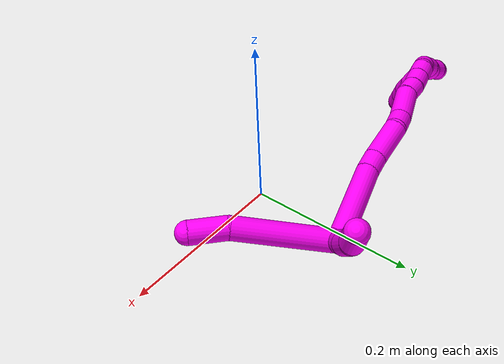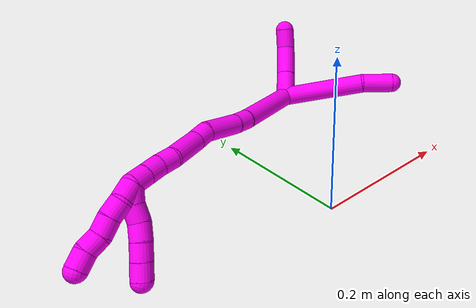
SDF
<sdf version="1.7">
 <world name="default">
  <model name="bin">
   <static>1</static>
   <link name="bottom">
    <collision name="collision-bottom">
     <pose>0 0 -0.01 0 -0 0</pose>
     <geometry><box><size>0.8 0.6 0.02</size></box></geometry>
     <surface>
      <friction><ode><mu>100</mu><mu2>100</mu2></ode></friction>
      <contact><collide_bitmask>65535</collide_bitmask></contact>
     </surface>
    </collision>
   </link>
   <link name="west_wall">
    <collision name="collision-west_wall">
     <pose>-0.41 0 0.1 0 -0 0</pose>
     <geometry><box><size>0.02 0.6 0.2</size></box></geometry>
     <surface>
      <friction><ode><mu>100</mu><mu2>100</mu2></ode></friction>
      <contact><collide_bitmask>65535</collide_bitmask></contact>
     </surface>
    </collision>
   </link>
   <link name="east_wall">
    <collision name="collision-east_wall">
     <pose>0.41 0 0.1 0 -0 0</pose>
     <geometry><box><size>0.02 0.6 0.2</size></box></geometry>
     <surface>
      <friction><ode><mu>100</mu><mu2>100</mu2></ode></friction>
      <contact><collide_bitmask>65535</collide_bitmask></contact>
     </surface>
    </collision>
   </link>
   <link name="south_wall">
    <collision name="collision-south_wall">
     <pose>0 -0.31 0.1 0 -0 0</pose>
     <geometry><box><size>0.8 0.02 0.2</size></box></geometry>
     <surface>
      <friction><ode><mu>100</mu><mu2>100</mu2></ode></friction>
      <contact><collide_bitmask>65535</collide_bitmask></contact>
     </surface>
    </collision>
   </link>
   <link name="north_wall">
    <collision name="collision-north_wall">
     <pose>0 0.31 0.1 0 -0 0</pose>
     <geometry><box><size>0.8 0.02 0.2</size></box></geometry>
     <surface>
      <friction><ode><mu>100</mu><mu2>100</mu2></ode></friction>
      <contact><collide_bitmask>65535</collide_bitmask></contact>
     </surface>
    </collision>
   </link>
  </model>
  <model name="10">
   <static>0</static>
   <link name="10">
    <collision name="collision-cylinder-e_1_2_8">
     <pose>0.01568 -0.048637 0.02028 1.17576 0.28921 0.193504</pose>
     <geometry><cylinder><radius>0.0125</radius><length>0.109958</length></cylinder></geometry>
     <surface>
      <friction><ode><mu>1.16</mu><mu2>1.16</mu2><slip1>0</slip1><slip2>0</slip2></ode></friction>
      <contact><ode><kp>1e+06</kp><kd>1</kd><max_vel>0</max_vel><min_depth>0.001</min_depth></ode></contact>
     </surface>
    </collision>
    <visual name="visual-cylinder-e_1_2_8">
     <pose>0.01568 -0.048637 0.02028 1.17576 0.28921 0.193504</pose>
     <geometry><cylinder><radius>0.0125</radius><length>0.109958</length></cylinder></geometry>
     <material><ambient>1 0 0.964706 1</ambient></material>
    </visual>
    <collision name="collision-cylinder-e_2_8_6">
     <pose>0.041371 -0.113865 0.045595 1.27608 0.523633 0.392287</pose>
     <geometry><cylinder><radius>0.0125</radius><length>0.040042</length></cylinder></geometry>
     <surface>
      <friction><ode><mu>1.16</mu><mu2>1.16</mu2><slip1>0</slip1><slip2>0</slip2></ode></friction>
      <contact><ode><kp>1e+06</kp><kd>1</kd><max_vel>0</max_vel><min_depth>0.001</min_depth></ode></contact>
     </surface>
    </collision>
    <visual name="visual-cylinder-e_2_8_6">
     <pose>0.041371 -0.113865 0.045595 1.27608 0.523633 0.392287</pose>
     <geometry><cylinder><radius>0.0125</radius><length>0.040042</length></cylinder></geometry>
     <material><ambient>1 0 0.964706 1</ambient></material>
    </visual>
    <collision name="collision-cylinder-e_1_2_9">
     <pose>0.002709 0.005602 0.015783 -0.341046 0.160358 -0.02767</pose>
     <geometry><cylinder><radius>0.0125</radius><length>0.033931</length></cylinder></geometry>
     <surface>
      <friction><ode><mu>1.16</mu><mu2>1.16</mu2><slip1>0</slip1><slip2>0</slip2></ode></friction>
      <contact><ode><kp>1e+06</kp><kd>1</kd><max_vel>0</max_vel><min_depth>0.001</min_depth></ode></contact>
     </surface>
    </collision>
    <visual name="visual-cylinder-e_1_2_9">
     <pose>0.002709 0.005602 0.015783 -0.341046 0.160358 -0.02767</pose>
     <geometry><cylinder><radius>0.0125</radius><length>0.033931</length></cylinder></geometry>
     <material><ambient>1 0 0.964706 1</ambient></material>
    </visual>
    <collision name="collision-cylinder-e_2_9_10">
     <pose>0.006724 0.017581 0.050458 -0.325586 0.065401 -0.010746</pose>
     <geometry><cylinder><radius>0.0125</radius><length>0.039963</length></cylinder></geometry>
     <surface>
      <friction><ode><mu>1.16</mu><mu2>1.16</mu2><slip1>0</slip1><slip2>0</slip2></ode></friction>
      <contact><ode><kp>1e+06</kp><kd>1</kd><max_vel>0</max_vel><min_depth>0.001</min_depth></ode></contact>
     </surface>
    </collision>
    <visual name="visual-cylinder-e_2_9_10">
     <pose>0.006724 0.017581 0.050458 -0.325586 0.065401 -0.010746</pose>
     <geometry><cylinder><radius>0.0125</radius><length>0.039963</length></cylinder></geometry>
     <material><ambient>1 0 0.964706 1</ambient></material>
    </visual>
    <collision name="collision-cylinder-e_3_10_5">
     <pose>0.004869 0.026372 0.081782 -0.191711 -0.244566 0.023632</pose>
     <geometry><cylinder><radius>0.0125</radius><length>0.026105</length></cylinder></geometry>
     <surface>
      <friction><ode><mu>1.16</mu><mu2>1.16</mu2><slip1>0</slip1><slip2>0</slip2></ode></friction>
      <contact><ode><kp>1e+06</kp><kd>1</kd><max_vel>0</max_vel><min_depth>0.001</min_depth></ode></contact>
     </surface>
    </collision>
    <visual name="visual-cylinder-e_3_10_5">
     <pose>0.004869 0.026372 0.081782 -0.191711 -0.244566 0.023632</pose>
     <geometry><cylinder><radius>0.0125</radius><length>0.026105</length></cylinder></geometry>
     <material><ambient>1 0 0.964706 1</ambient></material>
    </visual>
    <collision name="collision-cylinder-e_1_2_11">
     <pose>-0.044256 -0.003769 -0.023643 2.98353 -1.07491 -2.87737</pose>
     <geometry><cylinder><radius>0.0125</radius><length>0.100634</length></cylinder></geometry>
     <surface>
      <friction><ode><mu>1.16</mu><mu2>1.16</mu2><slip1>0</slip1><slip2>0</slip2></ode></friction>
      <contact><ode><kp>1e+06</kp><kd>1</kd><max_vel>0</max_vel><min_depth>0.001</min_depth></ode></contact>
     </surface>
    </collision>
    <visual name="visual-cylinder-e_1_2_11">
     <pose>-0.044256 -0.003769 -0.023643 2.98353 -1.07491 -2.87737</pose>
     <geometry><cylinder><radius>0.0125</radius><length>0.100634</length></cylinder></geometry>
     <material><ambient>1 0 0.964706 1</ambient></material>
    </visual>
    <collision name="collision-cylinder-e_2_11_12">
     <pose>-0.098472 -0.007171 -0.052077 -3.06531 -1.12126 3.02019</pose>
     <geometry><cylinder><radius>0.0125</radius><length>0.022116</length></cylinder></geometry>
     <surface>
      <friction><ode><mu>1.16</mu><mu2>1.16</mu2><slip1>0</slip1><slip2>0</slip2></ode></friction>
      <contact><ode><kp>1e+06</kp><kd>1</kd><max_vel>0</max_vel><min_depth>0.001</min_depth></ode></contact>
     </surface>
    </collision>
    <visual name="visual-cylinder-e_2_11_12">
     <pose>-0.098472 -0.007171 -0.052077 -3.06531 -1.12126 3.02019</pose>
     <geometry><cylinder><radius>0.0125</radius><length>0.022116</length></cylinder></geometry>
     <material><ambient>1 0 0.964706 1</ambient></material>
    </visual>
    <collision name="collision-cylinder-e_3_12_13">
     <pose>-0.130995 -0.003995 -0.065921 -2.84065 -1.17312 2.69299</pose>
     <geometry><cylinder><radius>0.0125</radius><length>0.048947</length></cylinder></geometry>
     <surface>
      <friction><ode><mu>1.16</mu><mu2>1.16</mu2><slip1>0</slip1><slip2>0</slip2></ode></friction>
      <contact><ode><kp>1e+06</kp><kd>1</kd><max_vel>0</max_vel><min_depth>0.001</min_depth></ode></contact>
     </surface>
    </collision>
    <visual name="visual-cylinder-e_3_12_13">
     <pose>-0.130995 -0.003995 -0.065921 -2.84065 -1.17312 2.69299</pose>
     <geometry><cylinder><radius>0.0125</radius><length>0.048947</length></cylinder></geometry>
     <material><ambient>1 0 0.964706 1</ambient></material>
    </visual>
    <collision name="collision-cylinder-e_4_13_14">
     <pose>-0.161838 -0.00178 -0.081565 3.05159 -0.896422 -2.95484</pose>
     <geometry><cylinder><radius>0.0125</radius><length>0.0212</length></cylinder></geometry>
     <surface>
      <friction><ode><mu>1.16</mu><mu2>1.16</mu2><slip1>0</slip1><slip2>0</slip2></ode></friction>
      <contact><ode><kp>1e+06</kp><kd>1</kd><max_vel>0</max_vel><min_depth>0.001</min_depth></ode></contact>
     </surface>
    </collision>
    <visual name="visual-cylinder-e_4_13_14">
     <pose>-0.161838 -0.00178 -0.081565 3.05159 -0.896422 -2.95484</pose>
     <geometry><cylinder><radius>0.0125</radius><length>0.0212</length></cylinder></geometry>
     <material><ambient>1 0 0.964706 1</ambient></material>
    </visual>
    <collision name="collision-cylinder-e_5_14_15">
     <pose>-0.189279 -0.005907 -0.099457 2.83871 -1.01735 -2.60731</pose>
     <geometry><cylinder><radius>0.0125</radius><length>0.045047</length></cylinder></geometry>
     <surface>
      <friction><ode><mu>1.16</mu><mu2>1.16</mu2><slip1>0</slip1><slip2>0</slip2></ode></friction>
      <contact><ode><kp>1e+06</kp><kd>1</kd><max_vel>0</max_vel><min_depth>0.001</min_depth></ode></contact>
     </surface>
    </collision>
    <visual name="visual-cylinder-e_5_14_15">
     <pose>-0.189279 -0.005907 -0.099457 2.83871 -1.01735 -2.60731</pose>
     <geometry><cylinder><radius>0.0125</radius><length>0.045047</length></cylinder></geometry>
     <material><ambient>1 0 0.964706 1</ambient></material>
    </visual>
    <collision name="collision-cylinder-e_6_15_16">
     <pose>-0.216688 -0.008254 -0.116508 -2.93851 -0.95211 2.75138</pose>
     <geometry><cylinder><radius>0.0125</radius><length>0.020249</length></cylinder></geometry>
     <surface>
      <friction><ode><mu>1.16</mu><mu2>1.16</mu2><slip1>0</slip1><slip2>0</slip2></ode></friction>
      <contact><ode><kp>1e+06</kp><kd>1</kd><max_vel>0</max_vel><min_depth>0.001</min_depth></ode></contact>
     </surface>
    </collision>
    <visual name="visual-cylinder-e_6_15_16">
     <pose>-0.216688 -0.008254 -0.116508 -2.93851 -0.95211 2.75138</pose>
     <geometry><cylinder><radius>0.0125</radius><length>0.020249</length></cylinder></geometry>
     <material><ambient>1 0 0.964706 1</ambient></material>
    </visual>
    <collision name="collision-cylinder-e_7_16_17">
     <pose>-0.233762 -0.007483 -0.128263 3.07283 -0.97239 -3.01161</pose>
     <geometry><cylinder><radius>0.0125</radius><length>0.021365</length></cylinder></geometry>
     <surface>
      <friction><ode><mu>1.16</mu><mu2>1.16</mu2><slip1>0</slip1><slip2>0</slip2></ode></friction>
      <contact><ode><kp>1e+06</kp><kd>1</kd><max_vel>0</max_vel><min_depth>0.001</min_depth></ode></contact>
     </surface>
    </collision>
    <visual name="visual-cylinder-e_7_16_17">
     <pose>-0.233762 -0.007483 -0.128263 3.07283 -0.97239 -3.01161</pose>
     <geometry><cylinder><radius>0.0125</radius><length>0.021365</length></cylinder></geometry>
     <material><ambient>1 0 0.964706 1</ambient></material>
    </visual>
    <collision name="collision-cylinder-e_8_17_1">
     <pose>-0.251017 -0.008286 -0.140035 3.0741 -0.969584 -3.01359</pose>
     <geometry><cylinder><radius>0.0125</radius><length>0.020441</length></cylinder></geometry>
     <surface>
      <friction><ode><mu>1.16</mu><mu2>1.16</mu2><slip1>0</slip1><slip2>0</slip2></ode></friction>
      <contact><ode><kp>1e+06</kp><kd>1</kd><max_vel>0</max_vel><min_depth>0.001</min_depth></ode></contact>
     </surface>
    </collision>
    <visual name="visual-cylinder-e_8_17_1">
     <pose>-0.251017 -0.008286 -0.140035 3.0741 -0.969584 -3.01359</pose>
     <geometry><cylinder><radius>0.0125</radius><length>0.020441</length></cylinder></geometry>
     <material><ambient>1 0 0.964706 1</ambient></material>
    </visual>
    <collision name="collision-cylinder-e_1_1_18">
     <pose>-0.25766 -0.011142 -0.155328 2.88826 0.179462 1.23015</pose>
     <geometry><cylinder><radius>0.0125</radius><length>0.02</length></cylinder></geometry>
     <surface>
      <friction><ode><mu>1.16</mu><mu2>1.16</mu2><slip1>0</slip1><slip2>0</slip2></ode></friction>
      <contact><ode><kp>1e+06</kp><kd>1</kd><max_vel>0</max_vel><min_depth>0.001</min_depth></ode></contact>
     </surface>
    </collision>
    <visual name="visual-cylinder-e_1_1_18">
     <pose>-0.25766 -0.011142 -0.155328 2.88826 0.179462 1.23015</pose>
     <geometry><cylinder><radius>0.0125</radius><length>0.02</length></cylinder></geometry>
     <material><ambient>1 0 0.964706 1</ambient></material>
    </visual>
    <collision name="collision-cylinder-e_2_18_19">
     <pose>-0.252291 -0.017725 -0.173232 2.68485 0.366566 1.34644</pose>
     <geometry><cylinder><radius>0.0125</radius><length>0.02</length></cylinder></geometry>
     <surface>
      <friction><ode><mu>1.16</mu><mu2>1.16</mu2><slip1>0</slip1><slip2>0</slip2></ode></friction>
      <contact><ode><kp>1e+06</kp><kd>1</kd><max_vel>0</max_vel><min_depth>0.001</min_depth></ode></contact>
     </surface>
    </collision>
    <visual name="visual-cylinder-e_2_18_19">
     <pose>-0.252291 -0.017725 -0.173232 2.68485 0.366566 1.34644</pose>
     <geometry><cylinder><radius>0.0125</radius><length>0.02</length></cylinder></geometry>
     <material><ambient>1 0 0.964706 1</ambient></material>
    </visual>
    <collision name="collision-cylinder-e_3_19_20">
     <pose>-0.247649 -0.025293 -0.190937 2.7873 0.106033 0.576335</pose>
     <geometry><cylinder><radius>0.0125</radius><length>0.02</length></cylinder></geometry>
     <surface>
      <friction><ode><mu>1.16</mu><mu2>1.16</mu2><slip1>0</slip1><slip2>0</slip2></ode></friction>
      <contact><ode><kp>1e+06</kp><kd>1</kd><max_vel>0</max_vel><min_depth>0.001</min_depth></ode></contact>
     </surface>
    </collision>
    <visual name="visual-cylinder-e_3_19_20">
     <pose>-0.247649 -0.025293 -0.190937 2.7873 0.106033 0.576335</pose>
     <geometry><cylinder><radius>0.0125</radius><length>0.02</length></cylinder></geometry>
     <material><ambient>1 0 0.964706 1</ambient></material>
    </visual>
    <collision name="collision-cylinder-e_4_20_21">
     <pose>-0.245465 -0.031138 -0.209907 2.89813 0.112787 0.864678</pose>
     <geometry><cylinder><radius>0.0125</radius><length>0.02</length></cylinder></geometry>
     <surface>
      <friction><ode><mu>1.16</mu><mu2>1.16</mu2><slip1>0</slip1><slip2>0</slip2></ode></friction>
      <contact><ode><kp>1e+06</kp><kd>1</kd><max_vel>0</max_vel><min_depth>0.001</min_depth></ode></contact>
     </surface>
    </collision>
    <visual name="visual-cylinder-e_4_20_21">
     <pose>-0.245465 -0.031138 -0.209907 2.89813 0.112787 0.864678</pose>
     <geometry><cylinder><radius>0.0125</radius><length>0.02</length></cylinder></geometry>
     <material><ambient>1 0 0.964706 1</ambient></material>
    </visual>
    <collision name="collision-cylinder-e_5_21_4">
     <pose>-0.243096 -0.035929 -0.229179 2.89776 0.12469 0.942434</pose>
     <geometry><cylinder><radius>0.0125</radius><length>0.02</length></cylinder></geometry>
     <surface>
      <friction><ode><mu>1.16</mu><mu2>1.16</mu2><slip1>0</slip1><slip2>0</slip2></ode></friction>
      <contact><ode><kp>1e+06</kp><kd>1</kd><max_vel>0</max_vel><min_depth>0.001</min_depth></ode></contact>
     </surface>
    </collision>
    <visual name="visual-cylinder-e_5_21_4">
     <pose>-0.243096 -0.035929 -0.229179 2.89776 0.12469 0.942434</pose>
     <geometry><cylinder><radius>0.0125</radius><length>0.02</length></cylinder></geometry>
     <material><ambient>1 0 0.964706 1</ambient></material>
    </visual>
    <collision name="collision-cylinder-e_1_1_22">
     <pose>-0.264659 -0.009783 -0.154264 3.01149 -0.548455 -2.68647</pose>
     <geometry><cylinder><radius>0.0125</radius><length>0.02</length></cylinder></geometry>
     <surface>
      <friction><ode><mu>1.16</mu><mu2>1.16</mu2><slip1>0</slip1><slip2>0</slip2></ode></friction>
      <contact><ode><kp>1e+06</kp><kd>1</kd><max_vel>0</max_vel><min_depth>0.001</min_depth></ode></contact>
     </surface>
    </collision>
    <visual name="visual-cylinder-e_1_1_22">
     <pose>-0.264659 -0.009783 -0.154264 3.01149 -0.548455 -2.68647</pose>
     <geometry><cylinder><radius>0.0125</radius><length>0.02</length></cylinder></geometry>
     <material><ambient>1 0 0.964706 1</ambient></material>
    </visual>
    <collision name="collision-cylinder-e_2_22_23">
     <pose>-0.273596 -0.009338 -0.171875 -2.97355 -0.381508 2.31903</pose>
     <geometry><cylinder><radius>0.0125</radius><length>0.02</length></cylinder></geometry>
     <surface>
      <friction><ode><mu>1.16</mu><mu2>1.16</mu2><slip1>0</slip1><slip2>0</slip2></ode></friction>
      <contact><ode><kp>1e+06</kp><kd>1</kd><max_vel>0</max_vel><min_depth>0.001</min_depth></ode></contact>
     </surface>
    </collision>
    <visual name="visual-cylinder-e_2_22_23">
     <pose>-0.273596 -0.009338 -0.171875 -2.97355 -0.381508 2.31903</pose>
     <geometry><cylinder><radius>0.0125</radius><length>0.02</length></cylinder></geometry>
     <material><ambient>1 0 0.964706 1</ambient></material>
    </visual>
    <collision name="collision-cylinder-e_3_23_24">
     <pose>-0.280051 -0.007518 -0.190642 -3.11375 -0.276647 2.94227</pose>
     <geometry><cylinder><radius>0.0125</radius><length>0.02</length></cylinder></geometry>
     <surface>
      <friction><ode><mu>1.16</mu><mu2>1.16</mu2><slip1>0</slip1><slip2>0</slip2></ode></friction>
      <contact><ode><kp>1e+06</kp><kd>1</kd><max_vel>0</max_vel><min_depth>0.001</min_depth></ode></contact>
     </surface>
    </collision>
    <visual name="visual-cylinder-e_3_23_24">
     <pose>-0.280051 -0.007518 -0.190642 -3.11375 -0.276647 2.94227</pose>
     <geometry><cylinder><radius>0.0125</radius><length>0.02</length></cylinder></geometry>
     <material><ambient>1 0 0.964706 1</ambient></material>
    </visual>
    <collision name="collision-cylinder-e_4_24_25">
     <pose>-0.28776 -0.005144 -0.208671 -2.89637 -0.5211 2.27566</pose>
     <geometry><cylinder><radius>0.0125</radius><length>0.02</length></cylinder></geometry>
     <surface>
      <friction><ode><mu>1.16</mu><mu2>1.16</mu2><slip1>0</slip1><slip2>0</slip2></ode></friction>
      <contact><ode><kp>1e+06</kp><kd>1</kd><max_vel>0</max_vel><min_depth>0.001</min_depth></ode></contact>
     </surface>
    </collision>
    <visual name="visual-cylinder-e_4_24_25">
     <pose>-0.28776 -0.005144 -0.208671 -2.89637 -0.5211 2.27566</pose>
     <geometry><cylinder><radius>0.0125</radius><length>0.02</length></cylinder></geometry>
     <material><ambient>1 0 0.964706 1</ambient></material>
    </visual>
    <collision name="collision-cylinder-e_5_25_3">
     <pose>-0.29611 -0.003413 -0.226491 3.10187 -0.343843 -2.9138</pose>
     <geometry><cylinder><radius>0.0125</radius><length>0.02</length></cylinder></geometry>
     <surface>
      <friction><ode><mu>1.16</mu><mu2>1.16</mu2><slip1>0</slip1><slip2>0</slip2></ode></friction>
      <contact><ode><kp>1e+06</kp><kd>1</kd><max_vel>0</max_vel><min_depth>0.001</min_depth></ode></contact>
     </surface>
    </collision>
    <visual name="visual-cylinder-e_5_25_3">
     <pose>-0.29611 -0.003413 -0.226491 3.10187 -0.343843 -2.9138</pose>
     <geometry><cylinder><radius>0.0125</radius><length>0.02</length></cylinder></geometry>
     <material><ambient>1 0 0.964706 1</ambient></material>
    </visual>
    <collision name="collision-sphere-3">
     <pose>-0.299481 -0.003787 -0.235899 0 -0 0</pose>
     <geometry><sphere><radius>0.0125</radius></sphere></geometry>
     <surface>
      <friction><ode><mu>1.16</mu><mu2>1.16</mu2><slip1>0</slip1><slip2>0</slip2></ode></friction>
      <contact><ode><kp>1e+06</kp><kd>1</kd><max_vel>0</max_vel><min_depth>0.001</min_depth></ode></contact>
     </surface>
    </collision>
    <visual name="visual-sphere-3">
     <pose>-0.299481 -0.003787 -0.235899 0 -0 0</pose>
     <geometry><sphere><radius>0.0125</radius></sphere></geometry>
     <material><ambient>1 0 0.964706 1</ambient></material>
    </visual>
    <collision name="collision-sphere-25">
     <pose>-0.292739 -0.003039 -0.217084 0 -0 0</pose>
     <geometry><sphere><radius>0.0125</radius></sphere></geometry>
     <surface>
      <friction><ode><mu>1.16</mu><mu2>1.16</mu2><slip1>0</slip1><slip2>0</slip2></ode></friction>
      <contact><ode><kp>1e+06</kp><kd>1</kd><max_vel>0</max_vel><min_depth>0.001</min_depth></ode></contact>
     </surface>
    </collision>
    <visual name="visual-sphere-25">
     <pose>-0.292739 -0.003039 -0.217084 0 -0 0</pose>
     <geometry><sphere><radius>0.0125</radius></sphere></geometry>
     <material><ambient>1 0 0.964706 1</ambient></material>
    </visual>
    <collision name="collision-sphere-24">
     <pose>-0.282782 -0.00725 -0.200258 0 -0 0</pose>
     <geometry><sphere><radius>0.0125</radius></sphere></geometry>
     <surface>
      <friction><ode><mu>1.16</mu><mu2>1.16</mu2><slip1>0</slip1><slip2>0</slip2></ode></friction>
      <contact><ode><kp>1e+06</kp><kd>1</kd><max_vel>0</max_vel><min_depth>0.001</min_depth></ode></contact>
     </surface>
    </collision>
    <visual name="visual-sphere-24">
     <pose>-0.282782 -0.00725 -0.200258 0 -0 0</pose>
     <geometry><sphere><radius>0.0125</radius></sphere></geometry>
     <material><ambient>1 0 0.964706 1</ambient></material>
    </visual>
    <collision name="collision-sphere-23">
     <pose>-0.277319 -0.007785 -0.181026 0 -0 0</pose>
     <geometry><sphere><radius>0.0125</radius></sphere></geometry>
     <surface>
      <friction><ode><mu>1.16</mu><mu2>1.16</mu2><slip1>0</slip1><slip2>0</slip2></ode></friction>
      <contact><ode><kp>1e+06</kp><kd>1</kd><max_vel>0</max_vel><min_depth>0.001</min_depth></ode></contact>
     </surface>
    </collision>
    <visual name="visual-sphere-23">
     <pose>-0.277319 -0.007785 -0.181026 0 -0 0</pose>
     <geometry><sphere><radius>0.0125</radius></sphere></geometry>
     <material><ambient>1 0 0.964706 1</ambient></material>
    </visual>
    <collision name="collision-sphere-22">
     <pose>-0.269873 -0.01089 -0.162725 0 -0 0</pose>
     <geometry><sphere><radius>0.0125</radius></sphere></geometry>
     <surface>
      <friction><ode><mu>1.16</mu><mu2>1.16</mu2><slip1>0</slip1><slip2>0</slip2></ode></friction>
      <contact><ode><kp>1e+06</kp><kd>1</kd><max_vel>0</max_vel><min_depth>0.001</min_depth></ode></contact>
     </surface>
    </collision>
    <visual name="visual-sphere-22">
     <pose>-0.269873 -0.01089 -0.162725 0 -0 0</pose>
     <geometry><sphere><radius>0.0125</radius></sphere></geometry>
     <material><ambient>1 0 0.964706 1</ambient></material>
    </visual>
    <collision name="collision-sphere-4">
     <pose>-0.241852 -0.038324 -0.238808 0 -0 0</pose>
     <geometry><sphere><radius>0.0125</radius></sphere></geometry>
     <surface>
      <friction><ode><mu>1.16</mu><mu2>1.16</mu2><slip1>0</slip1><slip2>0</slip2></ode></friction>
      <contact><ode><kp>1e+06</kp><kd>1</kd><max_vel>0</max_vel><min_depth>0.001</min_depth></ode></contact>
     </surface>
    </collision>
    <visual name="visual-sphere-4">
     <pose>-0.241852 -0.038324 -0.238808 0 -0 0</pose>
     <geometry><sphere><radius>0.0125</radius></sphere></geometry>
     <material><ambient>1 0 0.964706 1</ambient></material>
    </visual>
    <collision name="collision-sphere-21">
     <pose>-0.24434 -0.033533 -0.21955 0 -0 0</pose>
     <geometry><sphere><radius>0.0125</radius></sphere></geometry>
     <surface>
      <friction><ode><mu>1.16</mu><mu2>1.16</mu2><slip1>0</slip1><slip2>0</slip2></ode></friction>
      <contact><ode><kp>1e+06</kp><kd>1</kd><max_vel>0</max_vel><min_depth>0.001</min_depth></ode></contact>
     </surface>
    </collision>
    <visual name="visual-sphere-21">
     <pose>-0.24434 -0.033533 -0.21955 0 -0 0</pose>
     <geometry><sphere><radius>0.0125</radius></sphere></geometry>
     <material><ambient>1 0 0.964706 1</ambient></material>
    </visual>
    <collision name="collision-sphere-20">
     <pose>-0.246591 -0.028742 -0.200263 0 -0 0</pose>
     <geometry><sphere><radius>0.0125</radius></sphere></geometry>
     <surface>
      <friction><ode><mu>1.16</mu><mu2>1.16</mu2><slip1>0</slip1><slip2>0</slip2></ode></friction>
      <contact><ode><kp>1e+06</kp><kd>1</kd><max_vel>0</max_vel><min_depth>0.001</min_depth></ode></contact>
     </surface>
    </collision>
    <visual name="visual-sphere-20">
     <pose>-0.246591 -0.028742 -0.200263 0 -0 0</pose>
     <geometry><sphere><radius>0.0125</radius></sphere></geometry>
     <material><ambient>1 0 0.964706 1</ambient></material>
    </visual>
    <collision name="collision-sphere-5">
     <pose>0.001709 0.028785 0.094214 0 -0 0</pose>
     <geometry><sphere><radius>0.0125</radius></sphere></geometry>
     <surface>
      <friction><ode><mu>1.16</mu><mu2>1.16</mu2><slip1>0</slip1><slip2>0</slip2></ode></friction>
      <contact><ode><kp>1e+06</kp><kd>1</kd><max_vel>0</max_vel><min_depth>0.001</min_depth></ode></contact>
     </surface>
    </collision>
    <visual name="visual-sphere-5">
     <pose>0.001709 0.028785 0.094214 0 -0 0</pose>
     <geometry><sphere><radius>0.0125</radius></sphere></geometry>
     <material><ambient>1 0 0.964706 1</ambient></material>
    </visual>
    <collision name="collision-sphere-10">
     <pose>0.00803 0.023959 0.06935 0 -0 0</pose>
     <geometry><sphere><radius>0.0125</radius></sphere></geometry>
     <surface>
      <friction><ode><mu>1.16</mu><mu2>1.16</mu2><slip1>0</slip1><slip2>0</slip2></ode></friction>
      <contact><ode><kp>1e+06</kp><kd>1</kd><max_vel>0</max_vel><min_depth>0.001</min_depth></ode></contact>
     </surface>
    </collision>
    <visual name="visual-sphere-10">
     <pose>0.00803 0.023959 0.06935 0 -0 0</pose>
     <geometry><sphere><radius>0.0125</radius></sphere></geometry>
     <material><ambient>1 0 0.964706 1</ambient></material>
    </visual>
    <collision name="collision-sphere-6">
     <pose>0.051382 -0.130456 0.050632 0 -0 0</pose>
     <geometry><sphere><radius>0.0125</radius></sphere></geometry>
     <surface>
      <friction><ode><mu>1.16</mu><mu2>1.16</mu2><slip1>0</slip1><slip2>0</slip2></ode></friction>
      <contact><ode><kp>1e+06</kp><kd>1</kd><max_vel>0</max_vel><min_depth>0.001</min_depth></ode></contact>
     </surface>
    </collision>
    <visual name="visual-sphere-6">
     <pose>0.051382 -0.130456 0.050632 0 -0 0</pose>
     <geometry><sphere><radius>0.0125</radius></sphere></geometry>
     <material><ambient>1 0 0.964706 1</ambient></material>
    </visual>
    <collision name="collision-sphere-9">
     <pose>0.005418 0.011204 0.031567 0 -0 0</pose>
     <geometry><sphere><radius>0.0125</radius></sphere></geometry>
     <surface>
      <friction><ode><mu>1.16</mu><mu2>1.16</mu2><slip1>0</slip1><slip2>0</slip2></ode></friction>
      <contact><ode><kp>1e+06</kp><kd>1</kd><max_vel>0</max_vel><min_depth>0.001</min_depth></ode></contact>
     </surface>
    </collision>
    <visual name="visual-sphere-9">
     <pose>0.005418 0.011204 0.031567 0 -0 0</pose>
     <geometry><sphere><radius>0.0125</radius></sphere></geometry>
     <material><ambient>1 0 0.964706 1</ambient></material>
    </visual>
    <collision name="collision-sphere-2">
     <geometry><sphere><radius>0.0125</radius></sphere></geometry>
     <surface>
      <friction><ode><mu>1.16</mu><mu2>1.16</mu2><slip1>0</slip1><slip2>0</slip2></ode></friction>
      <contact><ode><kp>1e+06</kp><kd>1</kd><max_vel>0</max_vel><min_depth>0.001</min_depth></ode></contact>
     </surface>
    </collision>
    <visual name="visual-sphere-2">
     <geometry><sphere><radius>0.0125</radius></sphere></geometry>
     <material><ambient>1 0 0.964706 1</ambient></material>
    </visual>
    <collision name="collision-sphere-19">
     <pose>-0.248707 -0.021843 -0.181611 0 -0 0</pose>
     <geometry><sphere><radius>0.0125</radius></sphere></geometry>
     <surface>
      <friction><ode><mu>1.16</mu><mu2>1.16</mu2><slip1>0</slip1><slip2>0</slip2></ode></friction>
      <contact><ode><kp>1e+06</kp><kd>1</kd><max_vel>0</max_vel><min_depth>0.001</min_depth></ode></contact>
     </surface>
    </collision>
    <visual name="visual-sphere-19">
     <pose>-0.248707 -0.021843 -0.181611 0 -0 0</pose>
     <geometry><sphere><radius>0.0125</radius></sphere></geometry>
     <material><ambient>1 0 0.964706 1</ambient></material>
    </visual>
    <collision name="collision-sphere-8">
     <pose>0.031359 -0.097274 0.040559 0 -0 0</pose>
     <geometry><sphere><radius>0.0125</radius></sphere></geometry>
     <surface>
      <friction><ode><mu>1.16</mu><mu2>1.16</mu2><slip1>0</slip1><slip2>0</slip2></ode></friction>
      <contact><ode><kp>1e+06</kp><kd>1</kd><max_vel>0</max_vel><min_depth>0.001</min_depth></ode></contact>
     </surface>
    </collision>
    <visual name="visual-sphere-8">
     <pose>0.031359 -0.097274 0.040559 0 -0 0</pose>
     <geometry><sphere><radius>0.0125</radius></sphere></geometry>
     <material><ambient>1 0 0.964706 1</ambient></material>
    </visual>
    <collision name="collision-sphere-11">
     <pose>-0.088512 -0.007537 -0.047286 0 -0 0</pose>
     <geometry><sphere><radius>0.0125</radius></sphere></geometry>
     <surface>
      <friction><ode><mu>1.16</mu><mu2>1.16</mu2><slip1>0</slip1><slip2>0</slip2></ode></friction>
      <contact><ode><kp>1e+06</kp><kd>1</kd><max_vel>0</max_vel><min_depth>0.001</min_depth></ode></contact>
     </surface>
    </collision>
    <visual name="visual-sphere-11">
     <pose>-0.088512 -0.007537 -0.047286 0 -0 0</pose>
     <geometry><sphere><radius>0.0125</radius></sphere></geometry>
     <material><ambient>1 0 0.964706 1</ambient></material>
    </visual>
    <collision name="collision-sphere-12">
     <pose>-0.108431 -0.006805 -0.056869 0 -0 0</pose>
     <geometry><sphere><radius>0.0125</radius></sphere></geometry>
     <surface>
      <friction><ode><mu>1.16</mu><mu2>1.16</mu2><slip1>0</slip1><slip2>0</slip2></ode></friction>
      <contact><ode><kp>1e+06</kp><kd>1</kd><max_vel>0</max_vel><min_depth>0.001</min_depth></ode></contact>
     </surface>
    </collision>
    <visual name="visual-sphere-12">
     <pose>-0.108431 -0.006805 -0.056869 0 -0 0</pose>
     <geometry><sphere><radius>0.0125</radius></sphere></geometry>
     <material><ambient>1 0 0.964706 1</ambient></material>
    </visual>
    <collision name="collision-sphere-13">
     <pose>-0.153558 -0.001186 -0.074973 0 -0 0</pose>
     <geometry><sphere><radius>0.0125</radius></sphere></geometry>
     <surface>
      <friction><ode><mu>1.16</mu><mu2>1.16</mu2><slip1>0</slip1><slip2>0</slip2></ode></friction>
      <contact><ode><kp>1e+06</kp><kd>1</kd><max_vel>0</max_vel><min_depth>0.001</min_depth></ode></contact>
     </surface>
    </collision>
    <visual name="visual-sphere-13">
     <pose>-0.153558 -0.001186 -0.074973 0 -0 0</pose>
     <geometry><sphere><radius>0.0125</radius></sphere></geometry>
     <material><ambient>1 0 0.964706 1</ambient></material>
    </visual>
    <collision name="collision-sphere-14">
     <pose>-0.170118 -0.002375 -0.088157 0 -0 0</pose>
     <geometry><sphere><radius>0.0125</radius></sphere></geometry>
     <surface>
      <friction><ode><mu>1.16</mu><mu2>1.16</mu2><slip1>0</slip1><slip2>0</slip2></ode></friction>
      <contact><ode><kp>1e+06</kp><kd>1</kd><max_vel>0</max_vel><min_depth>0.001</min_depth></ode></contact>
     </surface>
    </collision>
    <visual name="visual-sphere-14">
     <pose>-0.170118 -0.002375 -0.088157 0 -0 0</pose>
     <geometry><sphere><radius>0.0125</radius></sphere></geometry>
     <material><ambient>1 0 0.964706 1</ambient></material>
    </visual>
    <collision name="collision-sphere-15">
     <pose>-0.20844 -0.009438 -0.110757 0 -0 0</pose>
     <geometry><sphere><radius>0.0125</radius></sphere></geometry>
     <surface>
      <friction><ode><mu>1.16</mu><mu2>1.16</mu2><slip1>0</slip1><slip2>0</slip2></ode></friction>
      <contact><ode><kp>1e+06</kp><kd>1</kd><max_vel>0</max_vel><min_depth>0.001</min_depth></ode></contact>
     </surface>
    </collision>
    <visual name="visual-sphere-15">
     <pose>-0.20844 -0.009438 -0.110757 0 -0 0</pose>
     <geometry><sphere><radius>0.0125</radius></sphere></geometry>
     <material><ambient>1 0 0.964706 1</ambient></material>
    </visual>
    <collision name="collision-sphere-16">
     <pose>-0.224936 -0.007069 -0.12226 0 -0 0</pose>
     <geometry><sphere><radius>0.0125</radius></sphere></geometry>
     <surface>
      <friction><ode><mu>1.16</mu><mu2>1.16</mu2><slip1>0</slip1><slip2>0</slip2></ode></friction>
      <contact><ode><kp>1e+06</kp><kd>1</kd><max_vel>0</max_vel><min_depth>0.001</min_depth></ode></contact>
     </surface>
    </collision>
    <visual name="visual-sphere-16">
     <pose>-0.224936 -0.007069 -0.12226 0 -0 0</pose>
     <geometry><sphere><radius>0.0125</radius></sphere></geometry>
     <material><ambient>1 0 0.964706 1</ambient></material>
    </visual>
    <collision name="collision-sphere-17">
     <pose>-0.242588 -0.007896 -0.134266 0 -0 0</pose>
     <geometry><sphere><radius>0.0125</radius></sphere></geometry>
     <surface>
      <friction><ode><mu>1.16</mu><mu2>1.16</mu2><slip1>0</slip1><slip2>0</slip2></ode></friction>
      <contact><ode><kp>1e+06</kp><kd>1</kd><max_vel>0</max_vel><min_depth>0.001</min_depth></ode></contact>
     </surface>
    </collision>
    <visual name="visual-sphere-17">
     <pose>-0.242588 -0.007896 -0.134266 0 -0 0</pose>
     <geometry><sphere><radius>0.0125</radius></sphere></geometry>
     <material><ambient>1 0 0.964706 1</ambient></material>
    </visual>
    <collision name="collision-sphere-1">
     <pose>-0.259445 -0.008676 -0.145803 0 -0 0</pose>
     <geometry><sphere><radius>0.0125</radius></sphere></geometry>
     <surface>
      <friction><ode><mu>1.16</mu><mu2>1.16</mu2><slip1>0</slip1><slip2>0</slip2></ode></friction>
      <contact><ode><kp>1e+06</kp><kd>1</kd><max_vel>0</max_vel><min_depth>0.001</min_depth></ode></contact>
     </surface>
    </collision>
    <visual name="visual-sphere-1">
     <pose>-0.259445 -0.008676 -0.145803 0 -0 0</pose>
     <geometry><sphere><radius>0.0125</radius></sphere></geometry>
     <material><ambient>1 0 0.964706 1</ambient></material>
    </visual>
    <collision name="collision-sphere-18">
     <pose>-0.255875 -0.013608 -0.164853 0 -0 0</pose>
     <geometry><sphere><radius>0.0125</radius></sphere></geometry>
     <surface>
      <friction><ode><mu>1.16</mu><mu2>1.16</mu2><slip1>0</slip1><slip2>0</slip2></ode></friction>
      <contact><ode><kp>1e+06</kp><kd>1</kd><max_vel>0</max_vel><min_depth>0.001</min_depth></ode></contact>
     </surface>
    </collision>
    <visual name="visual-sphere-18">
     <pose>-0.255875 -0.013608 -0.164853 0 -0 0</pose>
     <geometry><sphere><radius>0.0125</radius></sphere></geometry>
     <material><ambient>1 0 0.964706 1</ambient></material>
    </visual>
    <inertial>
     <pose>-0.11815 -0.017318 -0.067196 0 -0 0</pose>
     <mass>0.75</mass>
     <inertia>
      <ixx>7.3e-05</ixx>
      <ixy>0</ixy>
      <ixz>0</ixz>
      <iyy>0.000193</iyy>
      <iyz>0</iyz>
      <izz>0.000166</izz>
     </inertia>
    </inertial>
   </link>
   <pose>0.070709 0.159688 0.07362 -0.110432 0.580959 0.181024</pose>
  </model>
 </world>
</sdf>
